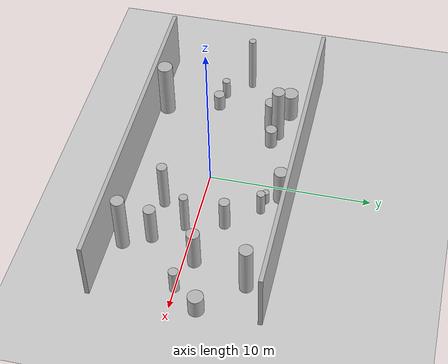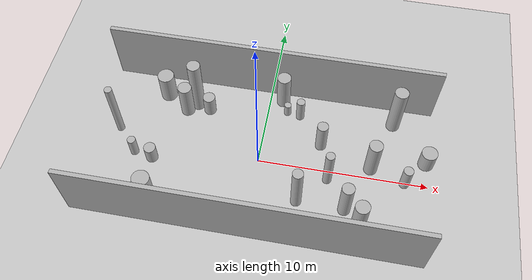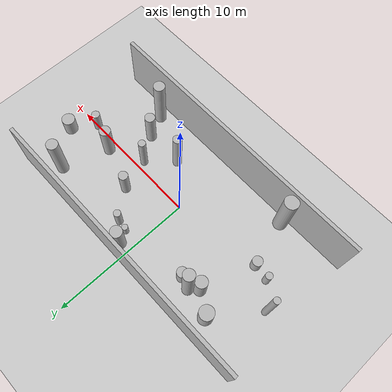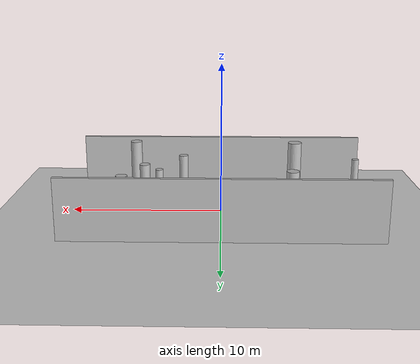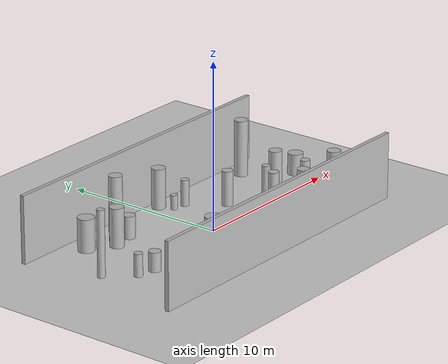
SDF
<?xml version="1.0"?>
<sdf version="1.4">
  <world name="default">
    <gui>
      <camera name="user_camera">
        <pose>-20 -30 40 0 0.66 0.83</pose>
      </camera>
    </gui>
    <include>
      <uri>model://ground_plane</uri>
    </include>
    <include>
      <uri>model://sun</uri>
    </include>
    <scene>
      <shadows>0</shadows>
    </scene>
    <model name="forest">
      <static>true</static>
      <link name="cylinder0">
        <pose>-3.6165971602737867 3.098267417991945 0.6774568121544451 0 0 0 </pose>
        <visual name="visual">
          <geometry>
            <cylinder>
              <radius>0.3692091196130266</radius>
              <length>1.3549136243088902</length>
            </cylinder>
          </geometry>
        </visual>
        <collision name="collision">
          <geometry>
            <cylinder>
              <radius>0.3692091196130266</radius>
              <length>1.3549136243088902</length>
            </cylinder>
          </geometry>
          <max_contacts>0</max_contacts>
        </collision>
      </link>
      <link name="cylinder1">
        <pose>5.3794835485750205 -2.2487850614559166 1.3025853911314704 0 0 0 </pose>
        <visual name="visual">
          <geometry>
            <cylinder>
              <radius>0.36038710502828597</radius>
              <length>2.605170782262941</length>
            </cylinder>
          </geometry>
        </visual>
        <collision name="collision">
          <geometry>
            <cylinder>
              <radius>0.36038710502828597</radius>
              <length>2.605170782262941</length>
            </cylinder>
          </geometry>
          <max_contacts>0</max_contacts>
        </collision>
      </link>
      <link name="cylinder2">
        <pose>2.6222399896683655 -2.2196083658022414 1.6426627255389439 0 0 0 </pose>
        <visual name="visual">
          <geometry>
            <cylinder>
              <radius>0.3102053217736467</radius>
              <length>3.2853254510778878</length>
            </cylinder>
          </geometry>
        </visual>
        <collision name="collision">
          <geometry>
            <cylinder>
              <radius>0.3102053217736467</radius>
              <length>3.2853254510778878</length>
            </cylinder>
          </geometry>
          <max_contacts>0</max_contacts>
        </collision>
      </link>
      <link name="cylinder3">
        <pose>6.1269375034890174 -3.811186038708154 1.9331065511174947 0 0 0 </pose>
        <visual name="visual">
          <geometry>
            <cylinder>
              <radius>0.3982790586282373</radius>
              <length>3.8662131022349895</length>
            </cylinder>
          </geometry>
        </visual>
        <collision name="collision">
          <geometry>
            <cylinder>
              <radius>0.3982790586282373</radius>
              <length>3.8662131022349895</length>
            </cylinder>
          </geometry>
          <max_contacts>0</max_contacts>
        </collision>
      </link>
      <link name="cylinder4">
        <pose>6.609234900215551 0.641515824170849 1.3307227851284482 0 0 0 </pose>
        <visual name="visual">
          <geometry>
            <cylinder>
              <radius>0.3941797012882894</radius>
              <length>2.6614455702568964</length>
            </cylinder>
          </geometry>
        </visual>
        <collision name="collision">
          <geometry>
            <cylinder>
              <radius>0.3941797012882894</radius>
              <length>2.6614455702568964</length>
            </cylinder>
          </geometry>
          <max_contacts>0</max_contacts>
        </collision>
      </link>
      <link name="cylinder5">
        <pose>1.1768159865396122 3.7421399966857773 0.4288696456902704 0 0 0 </pose>
        <visual name="visual">
          <geometry>
            <cylinder>
              <radius>0.2114202979031521</radius>
              <length>0.8577392913805408</length>
            </cylinder>
          </geometry>
        </visual>
        <collision name="collision">
          <geometry>
            <cylinder>
              <radius>0.2114202979031521</radius>
              <length>0.8577392913805408</length>
            </cylinder>
          </geometry>
          <max_contacts>0</max_contacts>
        </collision>
      </link>
      <link name="cylinder6">
        <pose>-5.344102865451608 -4.185057064314057 1.8636514056673774 0 0 0 </pose>
        <visual name="visual">
          <geometry>
            <cylinder>
              <radius>0.48276203825707714</radius>
              <length>3.727302811334755</length>
            </cylinder>
          </geometry>
        </visual>
        <collision name="collision">
          <geometry>
            <cylinder>
              <radius>0.48276203825707714</radius>
              <length>3.727302811334755</length>
            </cylinder>
          </geometry>
          <max_contacts>0</max_contacts>
        </collision>
      </link>
      <link name="cylinder7">
        <pose>-6.245980390036623 -0.8839138368753865 0.5696426524227696 0 0 0 </pose>
        <visual name="visual">
          <geometry>
            <cylinder>
              <radius>0.3507297712376447</radius>
              <length>1.1392853048455391</length>
            </cylinder>
          </geometry>
        </visual>
        <collision name="collision">
          <geometry>
            <cylinder>
              <radius>0.3507297712376447</radius>
              <length>1.1392853048455391</length>
            </cylinder>
          </geometry>
          <max_contacts>0</max_contacts>
        </collision>
      </link>
      <link name="cylinder8">
        <pose>-6.4426695403892476 3.789870030982275 0.9860208033234735 0 0 0 </pose>
        <visual name="visual">
          <geometry>
            <cylinder>
              <radius>0.4962563838673856</radius>
              <length>1.972041606646947</length>
            </cylinder>
          </geometry>
        </visual>
        <collision name="collision">
          <geometry>
            <cylinder>
              <radius>0.4962563838673856</radius>
              <length>1.972041606646947</length>
            </cylinder>
          </geometry>
          <max_contacts>0</max_contacts>
        </collision>
      </link>
      <link name="cylinder9">
        <pose>-8.711382320054113 0.8019865501896692 1.9673436418189998 0 0 0 </pose>
        <visual name="visual">
          <geometry>
            <cylinder>
              <radius>0.21971004983086348</radius>
              <length>3.9346872836379996</length>
            </cylinder>
          </geometry>
        </visual>
        <collision name="collision">
          <geometry>
            <cylinder>
              <radius>0.21971004983086348</radius>
              <length>3.9346872836379996</length>
            </cylinder>
          </geometry>
          <max_contacts>0</max_contacts>
        </collision>
      </link>
      <link name="cylinder10">
        <pose>0.7868801851498493 4.558735775166907 1.2184453624753608 0 0 0 </pose>
        <visual name="visual">
          <geometry>
            <cylinder>
              <radius>0.4154176540303487</radius>
              <length>2.4368907249507217</length>
            </cylinder>
          </geometry>
        </visual>
        <collision name="collision">
          <geometry>
            <cylinder>
              <radius>0.4154176540303487</radius>
              <length>2.4368907249507217</length>
            </cylinder>
          </geometry>
          <max_contacts>0</max_contacts>
        </collision>
      </link>
      <link name="cylinder11">
        <pose>-4.417419975043002 3.3686460750109966 1.9504972794489501 0 0 0 </pose>
        <visual name="visual">
          <geometry>
            <cylinder>
              <radius>0.3916655742537309</radius>
              <length>3.9009945588979003</length>
            </cylinder>
          </geometry>
        </visual>
        <collision name="collision">
          <geometry>
            <cylinder>
              <radius>0.3916655742537309</radius>
              <length>3.9009945588979003</length>
            </cylinder>
          </geometry>
          <max_contacts>0</max_contacts>
        </collision>
      </link>
      <link name="cylinder12">
        <pose>8.636074126850552 -0.002616167232510236 0.7998517793336003 0 0 0 </pose>
        <visual name="visual">
          <geometry>
            <cylinder>
              <radius>0.2892014436254615</radius>
              <length>1.5997035586672006</length>
            </cylinder>
          </geometry>
        </visual>
        <collision name="collision">
          <geometry>
            <cylinder>
              <radius>0.2892014436254615</radius>
              <length>1.5997035586672006</length>
            </cylinder>
          </geometry>
          <max_contacts>0</max_contacts>
        </collision>
      </link>
      <link name="cylinder13">
        <pose>9.810381737325002 1.559860683500892 0.652578377801983 0 0 0 </pose>
        <visual name="visual">
          <geometry>
            <cylinder>
              <radius>0.4645631248165778</radius>
              <length>1.305156755603966</length>
            </cylinder>
          </geometry>
        </visual>
        <collision name="collision">
          <geometry>
            <cylinder>
              <radius>0.4645631248165778</radius>
              <length>1.305156755603966</length>
            </cylinder>
          </geometry>
          <max_contacts>0</max_contacts>
        </collision>
      </link>
      <link name="cylinder14">
        <pose>-7.380059985193381 -0.6726509171720707 0.6733690518754203 0 0 0 </pose>
        <visual name="visual">
          <geometry>
            <cylinder>
              <radius>0.2475467122298841</radius>
              <length>1.3467381037508406</length>
            </cylinder>
          </geometry>
        </visual>
        <collision name="collision">
          <geometry>
            <cylinder>
              <radius>0.2475467122298841</radius>
              <length>1.3467381037508406</length>
            </cylinder>
          </geometry>
          <max_contacts>0</max_contacts>
        </collision>
      </link>
      <link name="cylinder15">
        <pose>4.191465420589722 -0.5235545430985518 1.3813862343347627 0 0 0 </pose>
        <visual name="visual">
          <geometry>
            <cylinder>
              <radius>0.2594489357808875</radius>
              <length>2.7627724686695254</length>
            </cylinder>
          </geometry>
        </visual>
        <collision name="collision">
          <geometry>
            <cylinder>
              <radius>0.2594489357808875</radius>
              <length>2.7627724686695254</length>
            </cylinder>
          </geometry>
          <max_contacts>0</max_contacts>
        </collision>
      </link>
      <link name="cylinder16">
        <pose>7.687221986595318 3.950955189442576 1.7178670370789513 0 0 0 </pose>
        <visual name="visual">
          <geometry>
            <cylinder>
              <radius>0.4050904792028669</radius>
              <length>3.4357340741579026</length>
            </cylinder>
          </geometry>
        </visual>
        <collision name="collision">
          <geometry>
            <cylinder>
              <radius>0.4050904792028669</radius>
              <length>3.4357340741579026</length>
            </cylinder>
          </geometry>
          <max_contacts>0</max_contacts>
        </collision>
      </link>
      <link name="cylinder17">
        <pose>3.5219648529560565 1.7308212980092188 1.0624709203938072 0 0 0 </pose>
        <visual name="visual">
          <geometry>
            <cylinder>
              <radius>0.3265329191020704</radius>
              <length>2.1249418407876144</length>
            </cylinder>
          </geometry>
        </visual>
        <collision name="collision">
          <geometry>
            <cylinder>
              <radius>0.3265329191020704</radius>
              <length>2.1249418407876144</length>
            </cylinder>
          </geometry>
          <max_contacts>0</max_contacts>
        </collision>
      </link>
      <link name="cylinder18">
        <pose>1.9821755596563833 3.60186849786486 0.790468054253854 0 0 0 </pose>
        <visual name="visual">
          <geometry>
            <cylinder>
              <radius>0.2510002122268126</radius>
              <length>1.580936108507708</length>
            </cylinder>
          </geometry>
        </visual>
        <collision name="collision">
          <geometry>
            <cylinder>
              <radius>0.2510002122268126</radius>
              <length>1.580936108507708</length>
            </cylinder>
          </geometry>
          <max_contacts>0</max_contacts>
        </collision>
      </link>
      <link name="cylinder19">
        <pose>-4.974268600288038 2.8338245199538132 1.1776570900260364 0 0 0 </pose>
        <visual name="visual">
          <geometry>
            <cylinder>
              <radius>0.41535279388825536</radius>
              <length>2.3553141800520727</length>
            </cylinder>
          </geometry>
        </visual>
        <collision name="collision">
          <geometry>
            <cylinder>
              <radius>0.41535279388825536</radius>
              <length>2.3553141800520727</length>
            </cylinder>
          </geometry>
          <max_contacts>0</max_contacts>
        </collision>
      </link>
      <link name="cube0">
        <pose>0 5.25 2.0 0 0 0 </pose>
        <visual name="visual">
          <geometry>
            <box>
              <size>20 0.25 4.0</size>
            </box>
          </geometry>
        </visual>
        <collision name="collision">
          <geometry>
            <box>
              <size>20 0.25 4.0</size>
            </box>
          </geometry>
          <max_contacts>0</max_contacts>
        </collision>
      </link>
      <link name="cube1">
        <pose>0 -4.75 2.0 0 0 0 </pose>
        <visual name="visual">
          <geometry>
            <box>
              <size>20 0.25 4.0</size>
            </box>
          </geometry>
        </visual>
        <collision name="collision">
          <geometry>
            <box>
              <size>20 0.25 4.0</size>
            </box>
          </geometry>
          <max_contacts>0</max_contacts>
        </collision>
      </link>
    </model>
    <!-- Plugins -->
    <plugin name="gazebo_octomap" filename="librotors_gazebo_octomap_plugin.so"/>
    <plugin name="ros_interface_plugin" filename="librotors_gazebo_ros_interface_plugin.so"/>
    <!-- Physics -->
    <physics name="default_physics" default="0" type="ode">
      <max_step_size>0.004</max_step_size>
      <real_time_factor>1</real_time_factor>
      <real_time_update_rate>250</real_time_update_rate>
      <gravity>0 0 -9.8</gravity>
      <magnetic_field>6e-06 2.3e-05 -4.2e-05</magnetic_field>
      <ode>
        <solver>
          <type>quick</type>
          <iters>1000</iters>
          <sor>1.3</sor>
          <use_dynamic_moi_rescaling>0</use_dynamic_moi_rescaling>
        </solver>
        <constraints>
          <cfm>0</cfm>
          <erp>0.2</erp>
          <contact_max_correcting_vel>100</contact_max_correcting_vel>
          <contact_surface_layer>0.001</contact_surface_layer>
        </constraints>
      </ode>
    </physics>
  </world>
</sdf>
